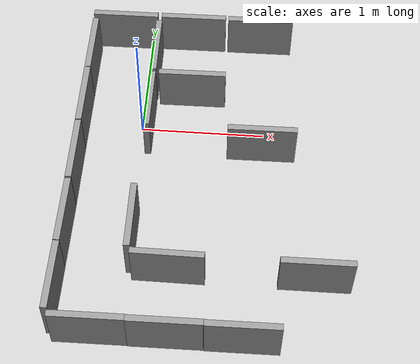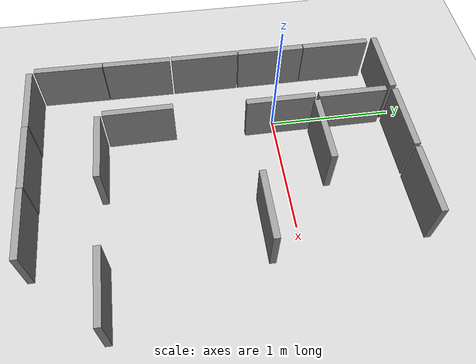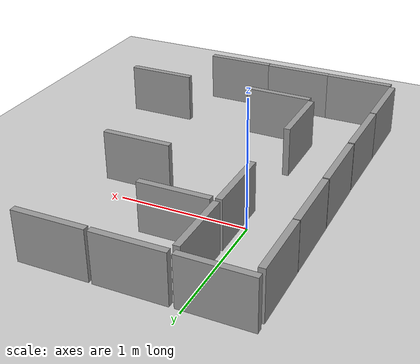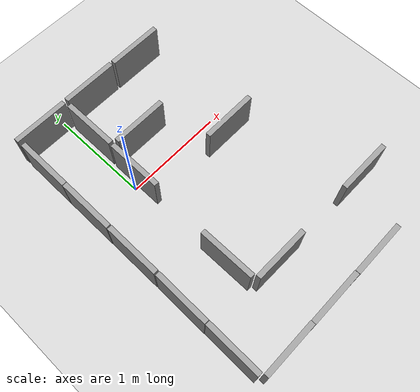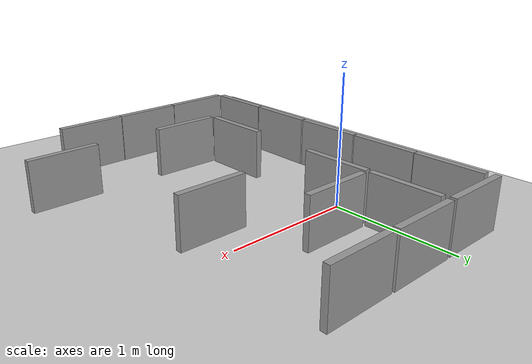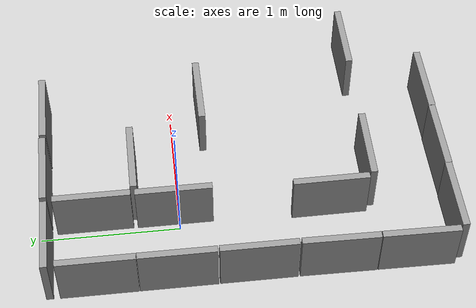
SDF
<sdf version="1.6">
 <world name="default">
  <model name="ground_plane">
   <static>1</static>
   <link name="link">
    <collision name="collision">
     <geometry><plane><normal>0 0 1</normal><size>100 100</size></plane></geometry>
     <surface>
      <contact><collide_bitmask>65535</collide_bitmask></contact>
      <friction><ode><mu>100</mu><mu2>50</mu2></ode></friction>
     </surface>
    </collision>
    <visual name="visual">
     <cast_shadows>0</cast_shadows>
     <geometry><plane><normal>0 0 1</normal><size>100 100</size></plane></geometry>
     <material>
      <script><uri>file://media/materials/scripts/gazebo.material</uri><name>Gazebo/Grey</name></script>
     </material>
    </visual>
   </link>
  </model>
  <model name="Maze_unit">
   <link name="link">
    <inertial>
     <mass>1</mass>
     <inertia>
      <ixx>0.166667</ixx>
      <ixy>0</ixy>
      <ixz>0</ixz>
      <iyy>0.166667</iyy>
      <iyz>0</iyz>
      <izz>0.166667</izz>
     </inertia>
    </inertial>
    <pose>-0.463146 -0.530916 -0 0 -0 0</pose>
    <visual name="visual">
     <geometry><box><size>0.05 0.55 0.4</size></box></geometry>
     <material>
      <script><name>Gazebo/Grey</name><uri>file://media/materials/scripts/gazebo.material</uri></script>
      <shader type="vertex"><normal_map>__default__</normal_map></shader>
      <ambient>0.3 0.3 0.3 1</ambient>
      <diffuse>0.7 0.7 0.7 1</diffuse>
      <specular>0.01 0.01 0.01 1</specular>
      <emissive>0 0 0 1</emissive>
     </material>
    </visual>
    <collision name="collision">
     <geometry><box><size>0.05 0.55 0.4</size></box></geometry>
     <surface>
      <friction>
       <ode><mu>1</mu><mu2>1</mu2><fdir1>0 0 0</fdir1><slip1>0</slip1><slip2>0</slip2></ode>
       <torsional>
        <coefficient>1</coefficient>
        <patch_radius>0</patch_radius>
        <surface_radius>0</surface_radius>
        <use_patch_radius>1</use_patch_radius>
        <ode><slip>0</slip></ode>
       </torsional>
      </friction>
      <bounce><restitution_coefficient>0</restitution_coefficient><threshold>1e+06</threshold></bounce>
      <contact>
       <collide_without_contact>0</collide_without_contact>
       <collide_without_contact_bitmask>1</collide_without_contact_bitmask>
       <collide_bitmask>1</collide_bitmask>
       <ode>
        <soft_cfm>0</soft_cfm>
        <soft_erp>0.2</soft_erp>
        <kp>1e+13</kp>
        <kd>1</kd>
        <max_vel>0.01</max_vel>
        <min_depth>0</min_depth>
       </ode>
       <bullet>
        <split_impulse>1</split_impulse>
        <split_impulse_penetration_threshold>-0.01</split_impulse_penetration_threshold>
        <soft_cfm>0</soft_cfm>
        <soft_erp>0.2</soft_erp>
        <kp>1e+13</kp>
        <kd>1</kd>
       </bullet>
      </contact>
     </surface>
    </collision>
   </link>
   <static>1</static>
   <pose>-0.011181 -1.11117 0.199993 -9e-06 -0 -0.010706</pose>
  </model>
  <model name="Maze_unit_0">
   <link name="link">
    <inertial>
     <mass>1</mass>
     <inertia>
      <ixx>0.166667</ixx>
      <ixy>0</ixy>
      <ixz>0</ixz>
      <iyy>0.166667</iyy>
      <iyz>0</iyz>
      <izz>0.166667</izz>
     </inertia>
    </inertial>
    <pose>-0.463146 -0.530916 -0 0 -0 0</pose>
    <visual name="visual">
     <geometry><box><size>0.05 0.55 0.4</size></box></geometry>
     <material>
      <script><name>Gazebo/Grey</name><uri>file://media/materials/scripts/gazebo.material</uri></script>
      <shader type="vertex"><normal_map>__default__</normal_map></shader>
      <ambient>0.3 0.3 0.3 1</ambient>
      <diffuse>0.7 0.7 0.7 1</diffuse>
      <specular>0.01 0.01 0.01 1</specular>
      <emissive>0 0 0 1</emissive>
     </material>
    </visual>
    <collision name="collision">
     <geometry><box><size>0.05 0.55 0.4</size></box></geometry>
     <surface>
      <friction>
       <ode><mu>1</mu><mu2>1</mu2><fdir1>0 0 0</fdir1><slip1>0</slip1><slip2>0</slip2></ode>
       <torsional>
        <coefficient>1</coefficient>
        <patch_radius>0</patch_radius>
        <surface_radius>0</surface_radius>
        <use_patch_radius>1</use_patch_radius>
        <ode><slip>0</slip></ode>
       </torsional>
      </friction>
      <bounce><restitution_coefficient>0</restitution_coefficient><threshold>1e+06</threshold></bounce>
      <contact>
       <collide_without_contact>0</collide_without_contact>
       <collide_without_contact_bitmask>1</collide_without_contact_bitmask>
       <collide_bitmask>1</collide_bitmask>
       <ode>
        <soft_cfm>0</soft_cfm>
        <soft_erp>0.2</soft_erp>
        <kp>1e+13</kp>
        <kd>1</kd>
        <max_vel>0.01</max_vel>
        <min_depth>0</min_depth>
       </ode>
       <bullet>
        <split_impulse>1</split_impulse>
        <split_impulse_penetration_threshold>-0.01</split_impulse_penetration_threshold>
        <soft_cfm>0</soft_cfm>
        <soft_erp>0.2</soft_erp>
        <kp>1e+13</kp>
        <kd>1</kd>
       </bullet>
      </contact>
     </surface>
    </collision>
   </link>
   <static>1</static>
   <pose>-0.006114 -0.556244 0.2 0 0 -0.010815</pose>
  </model>
  <model name="Maze_unit_clone">
   <link name="link">
    <inertial>
     <mass>1</mass>
     <inertia>
      <ixx>0.166667</ixx>
      <ixy>0</ixy>
      <ixz>0</ixz>
      <iyy>0.166667</iyy>
      <iyz>0</iyz>
      <izz>0.166667</izz>
     </inertia>
    </inertial>
    <pose>-0.463146 -0.530916 -0 0 -0 0</pose>
    <visual name="visual">
     <geometry><box><size>0.05 0.55 0.4</size></box></geometry>
     <material>
      <script><name>Gazebo/Grey</name><uri>file://media/materials/scripts/gazebo.material</uri></script>
      <shader type="vertex"><normal_map>__default__</normal_map></shader>
      <ambient>0.3 0.3 0.3 1</ambient>
      <diffuse>0.7 0.7 0.7 1</diffuse>
      <specular>0.01 0.01 0.01 1</specular>
      <emissive>0 0 0 1</emissive>
     </material>
    </visual>
    <collision name="collision">
     <geometry><box><size>0.05 0.55 0.4</size></box></geometry>
     <surface>
      <friction>
       <ode><mu>1</mu><mu2>1</mu2><fdir1>0 0 0</fdir1><slip1>0</slip1><slip2>0</slip2></ode>
       <torsional>
        <coefficient>1</coefficient>
        <patch_radius>0</patch_radius>
        <surface_radius>0</surface_radius>
        <use_patch_radius>1</use_patch_radius>
        <ode><slip>0</slip></ode>
       </torsional>
      </friction>
      <bounce><restitution_coefficient>0</restitution_coefficient><threshold>1e+06</threshold></bounce>
      <contact>
       <collide_without_contact>0</collide_without_contact>
       <collide_without_contact_bitmask>1</collide_without_contact_bitmask>
       <collide_bitmask>1</collide_bitmask>
       <ode>
        <soft_cfm>0</soft_cfm>
        <soft_erp>0.2</soft_erp>
        <kp>1e+13</kp>
        <kd>1</kd>
        <max_vel>0.01</max_vel>
        <min_depth>0</min_depth>
       </ode>
       <bullet>
        <split_impulse>1</split_impulse>
        <split_impulse_penetration_threshold>-0.01</split_impulse_penetration_threshold>
        <soft_cfm>0</soft_cfm>
        <soft_erp>0.2</soft_erp>
        <kp>1e+13</kp>
        <kd>1</kd>
       </bullet>
      </contact>
     </surface>
    </collision>
   </link>
   <static>1</static>
   <pose>-0.009405 0.011997 0.2 0 0 -0.000526</pose>
  </model>
  <model name="Maze_unit_clone_0">
   <link name="link">
    <inertial>
     <mass>1</mass>
     <inertia>
      <ixx>0.166667</ixx>
      <ixy>0</ixy>
      <ixz>0</ixz>
      <iyy>0.166667</iyy>
      <iyz>0</iyz>
      <izz>0.166667</izz>
     </inertia>
    </inertial>
    <pose>-0.463146 -0.530916 -0 0 -0 0</pose>
    <visual name="visual">
     <geometry><box><size>0.05 0.55 0.4</size></box></geometry>
     <material>
      <script><name>Gazebo/Grey</name><uri>file://media/materials/scripts/gazebo.material</uri></script>
      <shader type="vertex"><normal_map>__default__</normal_map></shader>
      <ambient>0.3 0.3 0.3 1</ambient>
      <diffuse>0.7 0.7 0.7 1</diffuse>
      <specular>0.01 0.01 0.01 1</specular>
      <emissive>0 0 0 1</emissive>
     </material>
    </visual>
    <collision name="collision">
     <geometry><box><size>0.05 0.55 0.4</size></box></geometry>
     <surface>
      <friction>
       <ode><mu>1</mu><mu2>1</mu2><fdir1>0 0 0</fdir1><slip1>0</slip1><slip2>0</slip2></ode>
       <torsional>
        <coefficient>1</coefficient>
        <patch_radius>0</patch_radius>
        <surface_radius>0</surface_radius>
        <use_patch_radius>1</use_patch_radius>
        <ode><slip>0</slip></ode>
       </torsional>
      </friction>
      <bounce><restitution_coefficient>0</restitution_coefficient><threshold>1e+06</threshold></bounce>
      <contact>
       <collide_without_contact>0</collide_without_contact>
       <collide_without_contact_bitmask>1</collide_without_contact_bitmask>
       <collide_bitmask>1</collide_bitmask>
       <ode>
        <soft_cfm>0</soft_cfm>
        <soft_erp>0.2</soft_erp>
        <kp>1e+13</kp>
        <kd>1</kd>
        <max_vel>0.01</max_vel>
        <min_depth>0</min_depth>
       </ode>
       <bullet>
        <split_impulse>1</split_impulse>
        <split_impulse_penetration_threshold>-0.01</split_impulse_penetration_threshold>
        <soft_cfm>0</soft_cfm>
        <soft_erp>0.2</soft_erp>
        <kp>1e+13</kp>
        <kd>1</kd>
       </bullet>
      </contact>
     </surface>
    </collision>
   </link>
   <static>1</static>
   <pose>-0.010054 0.572677 0.2 1e-06 1e-06 -0.00027</pose>
  </model>
  <model name="Maze_unit_clone_1">
   <link name="link">
    <inertial>
     <mass>1</mass>
     <inertia>
      <ixx>0.166667</ixx>
      <ixy>0</ixy>
      <ixz>0</ixz>
      <iyy>0.166667</iyy>
      <iyz>0</iyz>
      <izz>0.166667</izz>
     </inertia>
    </inertial>
    <pose>-0.463146 -0.530916 -0 0 -0 0</pose>
    <visual name="visual">
     <geometry><box><size>0.05 0.55 0.4</size></box></geometry>
     <material>
      <script><name>Gazebo/Grey</name><uri>file://media/materials/scripts/gazebo.material</uri></script>
      <shader type="vertex"><normal_map>__default__</normal_map></shader>
      <ambient>0.3 0.3 0.3 1</ambient>
      <diffuse>0.7 0.7 0.7 1</diffuse>
      <specular>0.01 0.01 0.01 1</specular>
      <emissive>0 0 0 1</emissive>
     </material>
    </visual>
    <collision name="collision">
     <geometry><box><size>0.05 0.55 0.4</size></box></geometry>
     <surface>
      <friction>
       <ode><mu>1</mu><mu2>1</mu2><fdir1>0 0 0</fdir1><slip1>0</slip1><slip2>0</slip2></ode>
       <torsional>
        <coefficient>1</coefficient>
        <patch_radius>0</patch_radius>
        <surface_radius>0</surface_radius>
        <use_patch_radius>1</use_patch_radius>
        <ode><slip>0</slip></ode>
       </torsional>
      </friction>
      <bounce><restitution_coefficient>0</restitution_coefficient><threshold>1e+06</threshold></bounce>
      <contact>
       <collide_without_contact>0</collide_without_contact>
       <collide_without_contact_bitmask>1</collide_without_contact_bitmask>
       <collide_bitmask>1</collide_bitmask>
       <ode>
        <soft_cfm>0</soft_cfm>
        <soft_erp>0.2</soft_erp>
        <kp>1e+13</kp>
        <kd>1</kd>
        <max_vel>0.01</max_vel>
        <min_depth>0</min_depth>
       </ode>
       <bullet>
        <split_impulse>1</split_impulse>
        <split_impulse_penetration_threshold>-0.01</split_impulse_penetration_threshold>
        <soft_cfm>0</soft_cfm>
        <soft_erp>0.2</soft_erp>
        <kp>1e+13</kp>
        <kd>1</kd>
       </bullet>
      </contact>
     </surface>
    </collision>
   </link>
   <static>1</static>
   <pose>-0.010091 1.1268 0.2 0 0 -0.000544</pose>
  </model>
  <model name="Maze_unit_clone_2">
   <link name="link">
    <inertial>
     <mass>1</mass>
     <inertia>
      <ixx>0.166667</ixx>
      <ixy>0</ixy>
      <ixz>0</ixz>
      <iyy>0.166667</iyy>
      <iyz>0</iyz>
      <izz>0.166667</izz>
     </inertia>
    </inertial>
    <pose>-0.463146 -0.530916 -0 0 -0 0</pose>
    <visual name="visual">
     <geometry><box><size>0.05 0.55 0.4</size></box></geometry>
     <material>
      <script><name>Gazebo/Grey</name><uri>file://media/materials/scripts/gazebo.material</uri></script>
      <shader type="vertex"><normal_map>__default__</normal_map></shader>
      <ambient>0.3 0.3 0.3 1</ambient>
      <diffuse>0.7 0.7 0.7 1</diffuse>
      <specular>0.01 0.01 0.01 1</specular>
      <emissive>0 0 0 1</emissive>
     </material>
    </visual>
    <collision name="collision">
     <geometry><box><size>0.05 0.55 0.4</size></box></geometry>
     <surface>
      <friction>
       <ode><mu>1</mu><mu2>1</mu2><fdir1>0 0 0</fdir1><slip1>0</slip1><slip2>0</slip2></ode>
       <torsional>
        <coefficient>1</coefficient>
        <patch_radius>0</patch_radius>
        <surface_radius>0</surface_radius>
        <use_patch_radius>1</use_patch_radius>
        <ode><slip>0</slip></ode>
       </torsional>
      </friction>
      <bounce><restitution_coefficient>0</restitution_coefficient><threshold>1e+06</threshold></bounce>
      <contact>
       <collide_without_contact>0</collide_without_contact>
       <collide_without_contact_bitmask>1</collide_without_contact_bitmask>
       <collide_bitmask>1</collide_bitmask>
       <ode>
        <soft_cfm>0</soft_cfm>
        <soft_erp>0.2</soft_erp>
        <kp>1e+13</kp>
        <kd>1</kd>
        <max_vel>0.01</max_vel>
        <min_depth>0</min_depth>
       </ode>
       <bullet>
        <split_impulse>1</split_impulse>
        <split_impulse_penetration_threshold>-0.01</split_impulse_penetration_threshold>
        <soft_cfm>0</soft_cfm>
        <soft_erp>0.2</soft_erp>
        <kp>1e+13</kp>
        <kd>1</kd>
       </bullet>
      </contact>
     </surface>
    </collision>
   </link>
   <static>1</static>
   <pose>0.496874 -0.561026 0.2 0 -0 0.006084</pose>
  </model>
  <model name="Maze_unit_clone_3">
   <link name="link">
    <inertial>
     <mass>1</mass>
     <inertia>
      <ixx>0.166667</ixx>
      <ixy>0</ixy>
      <ixz>0</ixz>
      <iyy>0.166667</iyy>
      <iyz>0</iyz>
      <izz>0.166667</izz>
     </inertia>
    </inertial>
    <pose>-0.463146 -0.530916 -0 0 -0 0</pose>
    <visual name="visual">
     <geometry><box><size>0.05 0.55 0.4</size></box></geometry>
     <material>
      <script><name>Gazebo/Grey</name><uri>file://media/materials/scripts/gazebo.material</uri></script>
      <shader type="vertex"><normal_map>__default__</normal_map></shader>
      <ambient>0.3 0.3 0.3 1</ambient>
      <diffuse>0.7 0.7 0.7 1</diffuse>
      <specular>0.01 0.01 0.01 1</specular>
      <emissive>0 0 0 1</emissive>
     </material>
    </visual>
    <collision name="collision">
     <geometry><box><size>0.05 0.55 0.4</size></box></geometry>
     <surface>
      <friction>
       <ode><mu>1</mu><mu2>1</mu2><fdir1>0 0 0</fdir1><slip1>0</slip1><slip2>0</slip2></ode>
       <torsional>
        <coefficient>1</coefficient>
        <patch_radius>0</patch_radius>
        <surface_radius>0</surface_radius>
        <use_patch_radius>1</use_patch_radius>
        <ode><slip>0</slip></ode>
       </torsional>
      </friction>
      <bounce><restitution_coefficient>0</restitution_coefficient><threshold>1e+06</threshold></bounce>
      <contact>
       <collide_without_contact>0</collide_without_contact>
       <collide_without_contact_bitmask>1</collide_without_contact_bitmask>
       <collide_bitmask>1</collide_bitmask>
       <ode>
        <soft_cfm>0</soft_cfm>
        <soft_erp>0.2</soft_erp>
        <kp>1e+13</kp>
        <kd>1</kd>
        <max_vel>0.01</max_vel>
        <min_depth>0</min_depth>
       </ode>
       <bullet>
        <split_impulse>1</split_impulse>
        <split_impulse_penetration_threshold>-0.01</split_impulse_penetration_threshold>
        <soft_cfm>0</soft_cfm>
        <soft_erp>0.2</soft_erp>
        <kp>1e+13</kp>
        <kd>1</kd>
       </bullet>
      </contact>
     </surface>
    </collision>
   </link>
   <static>1</static>
   <pose>0.530974 0.559352 0.2 0 -0 0.000106</pose>
  </model>
  <model name="Maze_unit_clone_4">
   <link name="link">
    <inertial>
     <mass>1</mass>
     <inertia>
      <ixx>0.166667</ixx>
      <ixy>0</ixy>
      <ixz>0</ixz>
      <iyy>0.166667</iyy>
      <iyz>0</iyz>
      <izz>0.166667</izz>
     </inertia>
    </inertial>
    <pose>-0.463146 -0.530916 -0 0 -0 0</pose>
    <visual name="visual">
     <geometry><box><size>0.05 0.55 0.4</size></box></geometry>
     <material>
      <script><name>Gazebo/Grey</name><uri>file://media/materials/scripts/gazebo.material</uri></script>
      <shader type="vertex"><normal_map>__default__</normal_map></shader>
      <ambient>0.3 0.3 0.3 1</ambient>
      <diffuse>0.7 0.7 0.7 1</diffuse>
      <specular>0.01 0.01 0.01 1</specular>
      <emissive>0 0 0 1</emissive>
     </material>
    </visual>
    <collision name="collision">
     <geometry><box><size>0.05 0.55 0.4</size></box></geometry>
     <surface>
      <friction>
       <ode><mu>1</mu><mu2>1</mu2><fdir1>0 0 0</fdir1><slip1>0</slip1><slip2>0</slip2></ode>
       <torsional>
        <coefficient>1</coefficient>
        <patch_radius>0</patch_radius>
        <surface_radius>0</surface_radius>
        <use_patch_radius>1</use_patch_radius>
        <ode><slip>0</slip></ode>
       </torsional>
      </friction>
      <bounce><restitution_coefficient>0</restitution_coefficient><threshold>1e+06</threshold></bounce>
      <contact>
       <collide_without_contact>0</collide_without_contact>
       <collide_without_contact_bitmask>1</collide_without_contact_bitmask>
       <collide_bitmask>1</collide_bitmask>
       <ode>
        <soft_cfm>0</soft_cfm>
        <soft_erp>0.2</soft_erp>
        <kp>1e+13</kp>
        <kd>1</kd>
        <max_vel>0.01</max_vel>
        <min_depth>0</min_depth>
       </ode>
       <bullet>
        <split_impulse>1</split_impulse>
        <split_impulse_penetration_threshold>-0.01</split_impulse_penetration_threshold>
        <soft_cfm>0</soft_cfm>
        <soft_erp>0.2</soft_erp>
        <kp>1e+13</kp>
        <kd>1</kd>
       </bullet>
      </contact>
     </surface>
    </collision>
   </link>
   <static>1</static>
   <pose>0.53227 1.1388 0.199993 -9e-06 -0 0.001029</pose>
  </model>
  <model name="Maze_unit_clone_5">
   <link name="link">
    <inertial>
     <mass>1</mass>
     <inertia>
      <ixx>0.166667</ixx>
      <ixy>0</ixy>
      <ixz>0</ixz>
      <iyy>0.166667</iyy>
      <iyz>0</iyz>
      <izz>0.166667</izz>
     </inertia>
    </inertial>
    <pose>-0.463146 -0.530916 -0 0 -0 0</pose>
    <visual name="visual">
     <geometry><box><size>0.05 0.55 0.4</size></box></geometry>
     <material>
      <script><name>Gazebo/Grey</name><uri>file://media/materials/scripts/gazebo.material</uri></script>
      <shader type="vertex"><normal_map>__default__</normal_map></shader>
      <ambient>0.3 0.3 0.3 1</ambient>
      <diffuse>0.7 0.7 0.7 1</diffuse>
      <specular>0.01 0.01 0.01 1</specular>
      <emissive>0 0 0 1</emissive>
     </material>
    </visual>
    <collision name="collision">
     <geometry><box><size>0.05 0.55 0.4</size></box></geometry>
     <surface>
      <friction>
       <ode><mu>1</mu><mu2>1</mu2><fdir1>0 0 0</fdir1><slip1>0</slip1><slip2>0</slip2></ode>
       <torsional>
        <coefficient>1</coefficient>
        <patch_radius>0</patch_radius>
        <surface_radius>0</surface_radius>
        <use_patch_radius>1</use_patch_radius>
        <ode><slip>0</slip></ode>
       </torsional>
      </friction>
      <bounce><restitution_coefficient>0</restitution_coefficient><threshold>1e+06</threshold></bounce>
      <contact>
       <collide_without_contact>0</collide_without_contact>
       <collide_without_contact_bitmask>1</collide_without_contact_bitmask>
       <collide_bitmask>1</collide_bitmask>
       <ode>
        <soft_cfm>0</soft_cfm>
        <soft_erp>0.2</soft_erp>
        <kp>1e+13</kp>
        <kd>1</kd>
        <max_vel>0.01</max_vel>
        <min_depth>0</min_depth>
       </ode>
       <bullet>
        <split_impulse>1</split_impulse>
        <split_impulse_penetration_threshold>-0.01</split_impulse_penetration_threshold>
        <soft_cfm>0</soft_cfm>
        <soft_erp>0.2</soft_erp>
        <kp>1e+13</kp>
        <kd>1</kd>
       </bullet>
      </contact>
     </surface>
    </collision>
   </link>
   <static>1</static>
   <pose>-0.718563 -1.48869 0.200001 0 -2e-06 1.5766</pose>
  </model>
  <model name="Maze_unit_clone_5_clone">
   <link name="link">
    <inertial>
     <mass>1</mass>
     <inertia>
      <ixx>0.166667</ixx>
      <ixy>0</ixy>
      <ixz>0</ixz>
      <iyy>0.166667</iyy>
      <iyz>0</iyz>
      <izz>0.166667</izz>
     </inertia>
    </inertial>
    <pose>-0.463146 -0.530916 -0 0 -0 0</pose>
    <visual name="visual">
     <geometry><box><size>0.05 0.55 0.4</size></box></geometry>
     <material>
      <script><name>Gazebo/Grey</name><uri>file://media/materials/scripts/gazebo.material</uri></script>
      <shader type="vertex"><normal_map>__default__</normal_map></shader>
      <ambient>0.3 0.3 0.3 1</ambient>
      <diffuse>0.7 0.7 0.7 1</diffuse>
      <specular>0.01 0.01 0.01 1</specular>
      <emissive>0 0 0 1</emissive>
     </material>
    </visual>
    <collision name="collision">
     <geometry><box><size>0.05 0.55 0.4</size></box></geometry>
     <surface>
      <friction>
       <ode><mu>1</mu><mu2>1</mu2><fdir1>0 0 0</fdir1><slip1>0</slip1><slip2>0</slip2></ode>
       <torsional>
        <coefficient>1</coefficient>
        <patch_radius>0</patch_radius>
        <surface_radius>0</surface_radius>
        <use_patch_radius>1</use_patch_radius>
        <ode><slip>0</slip></ode>
       </torsional>
      </friction>
      <bounce><restitution_coefficient>0</restitution_coefficient><threshold>1e+06</threshold></bounce>
      <contact>
       <collide_without_contact>0</collide_without_contact>
       <collide_without_contact_bitmask>1</collide_without_contact_bitmask>
       <collide_bitmask>1</collide_bitmask>
       <ode>
        <soft_cfm>0</soft_cfm>
        <soft_erp>0.2</soft_erp>
        <kp>1e+13</kp>
        <kd>1</kd>
        <max_vel>0.01</max_vel>
        <min_depth>0</min_depth>
       </ode>
       <bullet>
        <split_impulse>1</split_impulse>
        <split_impulse_penetration_threshold>-0.01</split_impulse_penetration_threshold>
        <soft_cfm>0</soft_cfm>
        <soft_erp>0.2</soft_erp>
        <kp>1e+13</kp>
        <kd>1</kd>
       </bullet>
      </contact>
     </surface>
    </collision>
   </link>
   <static>1</static>
   <pose>-0.168545 -1.48859 0.200001 0 -2e-06 1.5766</pose>
  </model>
  <model name="Maze_unit_clone_5_clone_0">
   <link name="link">
    <inertial>
     <mass>1</mass>
     <inertia>
      <ixx>0.166667</ixx>
      <ixy>0</ixy>
      <ixz>0</ixz>
      <iyy>0.166667</iyy>
      <iyz>0</iyz>
      <izz>0.166667</izz>
     </inertia>
    </inertial>
    <pose>-0.463146 -0.530916 -0 0 -0 0</pose>
    <visual name="visual">
     <geometry><box><size>0.05 0.55 0.4</size></box></geometry>
     <material>
      <script><name>Gazebo/Grey</name><uri>file://media/materials/scripts/gazebo.material</uri></script>
      <shader type="vertex"><normal_map>__default__</normal_map></shader>
      <ambient>0.3 0.3 0.3 1</ambient>
      <diffuse>0.7 0.7 0.7 1</diffuse>
      <specular>0.01 0.01 0.01 1</specular>
      <emissive>0 0 0 1</emissive>
     </material>
    </visual>
    <collision name="collision">
     <geometry><box><size>0.05 0.55 0.4</size></box></geometry>
     <surface>
      <friction>
       <ode><mu>1</mu><mu2>1</mu2><fdir1>0 0 0</fdir1><slip1>0</slip1><slip2>0</slip2></ode>
       <torsional>
        <coefficient>1</coefficient>
        <patch_radius>0</patch_radius>
        <surface_radius>0</surface_radius>
        <use_patch_radius>1</use_patch_radius>
        <ode><slip>0</slip></ode>
       </torsional>
      </friction>
      <bounce><restitution_coefficient>0</restitution_coefficient><threshold>1e+06</threshold></bounce>
      <contact>
       <collide_without_contact>0</collide_without_contact>
       <collide_without_contact_bitmask>1</collide_without_contact_bitmask>
       <collide_bitmask>1</collide_bitmask>
       <ode>
        <soft_cfm>0</soft_cfm>
        <soft_erp>0.2</soft_erp>
        <kp>1e+13</kp>
        <kd>1</kd>
        <max_vel>0.01</max_vel>
        <min_depth>0</min_depth>
       </ode>
       <bullet>
        <split_impulse>1</split_impulse>
        <split_impulse_penetration_threshold>-0.01</split_impulse_penetration_threshold>
        <soft_cfm>0</soft_cfm>
        <soft_erp>0.2</soft_erp>
        <kp>1e+13</kp>
        <kd>1</kd>
       </bullet>
      </contact>
     </surface>
    </collision>
   </link>
   <static>1</static>
   <pose>0.382808 -1.48868 0.200002 -0 -5e-06 1.57668</pose>
  </model>
  <model name="Maze_unit_clone_5_clone_3">
   <link name="link">
    <inertial>
     <mass>1</mass>
     <inertia>
      <ixx>0.166667</ixx>
      <ixy>0</ixy>
      <ixz>0</ixz>
      <iyy>0.166667</iyy>
      <iyz>0</iyz>
      <izz>0.166667</izz>
     </inertia>
    </inertial>
    <pose>-0.463146 -0.530916 -0 0 -0 0</pose>
    <visual name="visual">
     <geometry><box><size>0.05 0.55 0.4</size></box></geometry>
     <material>
      <script><name>Gazebo/Grey</name><uri>file://media/materials/scripts/gazebo.material</uri></script>
      <shader type="vertex"><normal_map>__default__</normal_map></shader>
      <ambient>0.3 0.3 0.3 1</ambient>
      <diffuse>0.7 0.7 0.7 1</diffuse>
      <specular>0.01 0.01 0.01 1</specular>
      <emissive>0 0 0 1</emissive>
     </material>
    </visual>
    <collision name="collision">
     <geometry><box><size>0.05 0.55 0.4</size></box></geometry>
     <surface>
      <friction>
       <ode><mu>1</mu><mu2>1</mu2><fdir1>0 0 0</fdir1><slip1>0</slip1><slip2>0</slip2></ode>
       <torsional>
        <coefficient>1</coefficient>
        <patch_radius>0</patch_radius>
        <surface_radius>0</surface_radius>
        <use_patch_radius>1</use_patch_radius>
        <ode><slip>0</slip></ode>
       </torsional>
      </friction>
      <bounce><restitution_coefficient>0</restitution_coefficient><threshold>1e+06</threshold></bounce>
      <contact>
       <collide_without_contact>0</collide_without_contact>
       <collide_without_contact_bitmask>1</collide_without_contact_bitmask>
       <collide_bitmask>1</collide_bitmask>
       <ode>
        <soft_cfm>0</soft_cfm>
        <soft_erp>0.2</soft_erp>
        <kp>1e+13</kp>
        <kd>1</kd>
        <max_vel>0.01</max_vel>
        <min_depth>0</min_depth>
       </ode>
       <bullet>
        <split_impulse>1</split_impulse>
        <split_impulse_penetration_threshold>-0.01</split_impulse_penetration_threshold>
        <soft_cfm>0</soft_cfm>
        <soft_erp>0.2</soft_erp>
        <kp>1e+13</kp>
        <kd>1</kd>
       </bullet>
      </contact>
     </surface>
    </collision>
   </link>
   <static>1</static>
   <pose>-0.752801 1.40494 0.2 0 1e-06 1.57111</pose>
  </model>
  <model name="Maze_unit_clone_5_clone_4">
   <link name="link">
    <inertial>
     <mass>1</mass>
     <inertia>
      <ixx>0.166667</ixx>
      <ixy>0</ixy>
      <ixz>0</ixz>
      <iyy>0.166667</iyy>
      <iyz>0</iyz>
      <izz>0.166667</izz>
     </inertia>
    </inertial>
    <pose>-0.463146 -0.530916 -0 0 -0 0</pose>
    <visual name="visual">
     <geometry><box><size>0.05 0.55 0.4</size></box></geometry>
     <material>
      <script><name>Gazebo/Grey</name><uri>file://media/materials/scripts/gazebo.material</uri></script>
      <shader type="vertex"><normal_map>__default__</normal_map></shader>
      <ambient>0.3 0.3 0.3 1</ambient>
      <diffuse>0.7 0.7 0.7 1</diffuse>
      <specular>0.01 0.01 0.01 1</specular>
      <emissive>0 0 0 1</emissive>
     </material>
    </visual>
    <collision name="collision">
     <geometry><box><size>0.05 0.55 0.4</size></box></geometry>
     <surface>
      <friction>
       <ode><mu>1</mu><mu2>1</mu2><fdir1>0 0 0</fdir1><slip1>0</slip1><slip2>0</slip2></ode>
       <torsional>
        <coefficient>1</coefficient>
        <patch_radius>0</patch_radius>
        <surface_radius>0</surface_radius>
        <use_patch_radius>1</use_patch_radius>
        <ode><slip>0</slip></ode>
       </torsional>
      </friction>
      <bounce><restitution_coefficient>0</restitution_coefficient><threshold>1e+06</threshold></bounce>
      <contact>
       <collide_without_contact>0</collide_without_contact>
       <collide_without_contact_bitmask>1</collide_without_contact_bitmask>
       <collide_bitmask>1</collide_bitmask>
       <ode>
        <soft_cfm>0</soft_cfm>
        <soft_erp>0.2</soft_erp>
        <kp>1e+13</kp>
        <kd>1</kd>
        <max_vel>0.01</max_vel>
        <min_depth>0</min_depth>
       </ode>
       <bullet>
        <split_impulse>1</split_impulse>
        <split_impulse_penetration_threshold>-0.01</split_impulse_penetration_threshold>
        <soft_cfm>0</soft_cfm>
        <soft_erp>0.2</soft_erp>
        <kp>1e+13</kp>
        <kd>1</kd>
       </bullet>
      </contact>
     </surface>
    </collision>
   </link>
   <static>1</static>
   <pose>-0.172311 1.40639 0.2 0 -0 1.57606</pose>
  </model>
  <model name="Maze_unit_clone_5_clone_5">
   <link name="link">
    <inertial>
     <mass>1</mass>
     <inertia>
      <ixx>0.166667</ixx>
      <ixy>0</ixy>
      <ixz>0</ixz>
      <iyy>0.166667</iyy>
      <iyz>0</iyz>
      <izz>0.166667</izz>
     </inertia>
    </inertial>
    <pose>-0.463146 -0.530916 -0 0 -0 0</pose>
    <visual name="visual">
     <geometry><box><size>0.05 0.55 0.4</size></box></geometry>
     <material>
      <script><name>Gazebo/Grey</name><uri>file://media/materials/scripts/gazebo.material</uri></script>
      <shader type="vertex"><normal_map>__default__</normal_map></shader>
      <ambient>0.3 0.3 0.3 1</ambient>
      <diffuse>0.7 0.7 0.7 1</diffuse>
      <specular>0.01 0.01 0.01 1</specular>
      <emissive>0 0 0 1</emissive>
     </material>
    </visual>
    <collision name="collision">
     <geometry><box><size>0.05 0.55 0.4</size></box></geometry>
     <surface>
      <friction>
       <ode><mu>1</mu><mu2>1</mu2><fdir1>0 0 0</fdir1><slip1>0</slip1><slip2>0</slip2></ode>
       <torsional>
        <coefficient>1</coefficient>
        <patch_radius>0</patch_radius>
        <surface_radius>0</surface_radius>
        <use_patch_radius>1</use_patch_radius>
        <ode><slip>0</slip></ode>
       </torsional>
      </friction>
      <bounce><restitution_coefficient>0</restitution_coefficient><threshold>1e+06</threshold></bounce>
      <contact>
       <collide_without_contact>0</collide_without_contact>
       <collide_without_contact_bitmask>1</collide_without_contact_bitmask>
       <collide_bitmask>1</collide_bitmask>
       <ode>
        <soft_cfm>0</soft_cfm>
        <soft_erp>0.2</soft_erp>
        <kp>1e+13</kp>
        <kd>1</kd>
        <max_vel>0.01</max_vel>
        <min_depth>0</min_depth>
       </ode>
       <bullet>
        <split_impulse>1</split_impulse>
        <split_impulse_penetration_threshold>-0.01</split_impulse_penetration_threshold>
        <soft_cfm>0</soft_cfm>
        <soft_erp>0.2</soft_erp>
        <kp>1e+13</kp>
        <kd>1</kd>
       </bullet>
      </contact>
     </surface>
    </collision>
   </link>
   <static>1</static>
   <pose>0.401259 1.40639 0.200003 9e-06 -0 1.57639</pose>
  </model>
  <model name="Maze_unit_clone_5_clone_8">
   <link name="link">
    <inertial>
     <mass>1</mass>
     <inertia>
      <ixx>0.166667</ixx>
      <ixy>0</ixy>
      <ixz>0</ixz>
      <iyy>0.166667</iyy>
      <iyz>0</iyz>
      <izz>0.166667</izz>
     </inertia>
    </inertial>
    <pose>-0.463146 -0.530916 -0 0 -0 0</pose>
    <visual name="visual">
     <geometry><box><size>0.05 0.55 0.4</size></box></geometry>
     <material>
      <script><name>Gazebo/Grey</name><uri>file://media/materials/scripts/gazebo.material</uri></script>
      <shader type="vertex"><normal_map>__default__</normal_map></shader>
      <ambient>0.3 0.3 0.3 1</ambient>
      <diffuse>0.7 0.7 0.7 1</diffuse>
      <specular>0.01 0.01 0.01 1</specular>
      <emissive>0 0 0 1</emissive>
     </material>
    </visual>
    <collision name="collision">
     <geometry><box><size>0.05 0.55 0.4</size></box></geometry>
     <surface>
      <friction>
       <ode><mu>1</mu><mu2>1</mu2><fdir1>0 0 0</fdir1><slip1>0</slip1><slip2>0</slip2></ode>
       <torsional>
        <coefficient>1</coefficient>
        <patch_radius>0</patch_radius>
        <surface_radius>0</surface_radius>
        <use_patch_radius>1</use_patch_radius>
        <ode><slip>0</slip></ode>
       </torsional>
      </friction>
      <bounce><restitution_coefficient>0</restitution_coefficient><threshold>1e+06</threshold></bounce>
      <contact>
       <collide_without_contact>0</collide_without_contact>
       <collide_without_contact_bitmask>1</collide_without_contact_bitmask>
       <collide_bitmask>1</collide_bitmask>
       <ode>
        <soft_cfm>0</soft_cfm>
        <soft_erp>0.2</soft_erp>
        <kp>1e+13</kp>
        <kd>1</kd>
        <max_vel>0.01</max_vel>
        <min_depth>0</min_depth>
       </ode>
       <bullet>
        <split_impulse>1</split_impulse>
        <split_impulse_penetration_threshold>-0.01</split_impulse_penetration_threshold>
        <soft_cfm>0</soft_cfm>
        <soft_erp>0.2</soft_erp>
        <kp>1e+13</kp>
        <kd>1</kd>
       </bullet>
      </contact>
     </surface>
    </collision>
   </link>
   <static>1</static>
   <pose>-0.139605 0.769959 0.2 1e-06 1e-06 1.57661</pose>
  </model>
  <model name="Maze_unit_clone_5_clone_9">
   <link name="link">
    <inertial>
     <mass>1</mass>
     <inertia>
      <ixx>0.166667</ixx>
      <ixy>0</ixy>
      <ixz>0</ixz>
      <iyy>0.166667</iyy>
      <iyz>0</iyz>
      <izz>0.166667</izz>
     </inertia>
    </inertial>
    <pose>-0.463146 -0.530916 -0 0 -0 0</pose>
    <visual name="visual">
     <geometry><box><size>0.05 0.55 0.4</size></box></geometry>
     <material>
      <script><name>Gazebo/Grey</name><uri>file://media/materials/scripts/gazebo.material</uri></script>
      <shader type="vertex"><normal_map>__default__</normal_map></shader>
      <ambient>0.3 0.3 0.3 1</ambient>
      <diffuse>0.7 0.7 0.7 1</diffuse>
      <specular>0.01 0.01 0.01 1</specular>
      <emissive>0 0 0 1</emissive>
     </material>
    </visual>
    <collision name="collision">
     <geometry><box><size>0.05 0.55 0.4</size></box></geometry>
     <surface>
      <friction>
       <ode><mu>1</mu><mu2>1</mu2><fdir1>0 0 0</fdir1><slip1>0</slip1><slip2>0</slip2></ode>
       <torsional>
        <coefficient>1</coefficient>
        <patch_radius>0</patch_radius>
        <surface_radius>0</surface_radius>
        <use_patch_radius>1</use_patch_radius>
        <ode><slip>0</slip></ode>
       </torsional>
      </friction>
      <bounce><restitution_coefficient>0</restitution_coefficient><threshold>1e+06</threshold></bounce>
      <contact>
       <collide_without_contact>0</collide_without_contact>
       <collide_without_contact_bitmask>1</collide_without_contact_bitmask>
       <collide_bitmask>1</collide_bitmask>
       <ode>
        <soft_cfm>0</soft_cfm>
        <soft_erp>0.2</soft_erp>
        <kp>1e+13</kp>
        <kd>1</kd>
        <max_vel>0.01</max_vel>
        <min_depth>0</min_depth>
       </ode>
       <bullet>
        <split_impulse>1</split_impulse>
        <split_impulse_penetration_threshold>-0.01</split_impulse_penetration_threshold>
        <soft_cfm>0</soft_cfm>
        <soft_erp>0.2</soft_erp>
        <kp>1e+13</kp>
        <kd>1</kd>
       </bullet>
      </contact>
     </surface>
    </collision>
   </link>
   <static>1</static>
   <pose>-0.188035 -0.940513 0.199998 0 4e-06 1.55995</pose>
  </model>
  <model name="Maze_unit_clone_5_clone_10">
   <link name="link">
    <inertial>
     <mass>1</mass>
     <inertia>
      <ixx>0.166667</ixx>
      <ixy>0</ixy>
      <ixz>0</ixz>
      <iyy>0.166667</iyy>
      <iyz>0</iyz>
      <izz>0.166667</izz>
     </inertia>
    </inertial>
    <pose>-0.463146 -0.530916 -0 0 -0 0</pose>
    <visual name="visual">
     <geometry><box><size>0.05 0.55 0.4</size></box></geometry>
     <material>
      <script><name>Gazebo/Grey</name><uri>file://media/materials/scripts/gazebo.material</uri></script>
      <shader type="vertex"><normal_map>__default__</normal_map></shader>
      <ambient>0.3 0.3 0.3 1</ambient>
      <diffuse>0.7 0.7 0.7 1</diffuse>
      <specular>0.01 0.01 0.01 1</specular>
      <emissive>0 0 0 1</emissive>
     </material>
    </visual>
    <collision name="collision">
     <geometry><box><size>0.05 0.55 0.4</size></box></geometry>
     <surface>
      <friction>
       <ode><mu>1</mu><mu2>1</mu2><fdir1>0 0 0</fdir1><slip1>0</slip1><slip2>0</slip2></ode>
       <torsional>
        <coefficient>1</coefficient>
        <patch_radius>0</patch_radius>
        <surface_radius>0</surface_radius>
        <use_patch_radius>1</use_patch_radius>
        <ode><slip>0</slip></ode>
       </torsional>
      </friction>
      <bounce><restitution_coefficient>0</restitution_coefficient><threshold>1e+06</threshold></bounce>
      <contact>
       <collide_without_contact>0</collide_without_contact>
       <collide_without_contact_bitmask>1</collide_without_contact_bitmask>
       <collide_bitmask>1</collide_bitmask>
       <ode>
        <soft_cfm>0</soft_cfm>
        <soft_erp>0.2</soft_erp>
        <kp>1e+13</kp>
        <kd>1</kd>
        <max_vel>0.01</max_vel>
        <min_depth>0</min_depth>
       </ode>
       <bullet>
        <split_impulse>1</split_impulse>
        <split_impulse_penetration_threshold>-0.01</split_impulse_penetration_threshold>
        <soft_cfm>0</soft_cfm>
        <soft_erp>0.2</soft_erp>
        <kp>1e+13</kp>
        <kd>1</kd>
       </bullet>
      </contact>
     </surface>
    </collision>
   </link>
   <static>1</static>
   <pose>0.456642 0.230422 0.200001 0 -2e-06 1.5765</pose>
  </model>
  <model name="Maze_unit_clone_5_clone_12">
   <link name="link">
    <inertial>
     <mass>1</mass>
     <inertia>
      <ixx>0.166667</ixx>
      <ixy>0</ixy>
      <ixz>0</ixz>
      <iyy>0.166667</iyy>
      <iyz>0</iyz>
      <izz>0.166667</izz>
     </inertia>
    </inertial>
    <pose>-0.463146 -0.530916 -0 0 -0 0</pose>
    <visual name="visual">
     <geometry><box><size>0.05 0.55 0.4</size></box></geometry>
     <material>
      <script><name>Gazebo/Grey</name><uri>file://media/materials/scripts/gazebo.material</uri></script>
      <shader type="vertex"><normal_map>__default__</normal_map></shader>
      <ambient>0.3 0.3 0.3 1</ambient>
      <diffuse>0.7 0.7 0.7 1</diffuse>
      <specular>0.01 0.01 0.01 1</specular>
      <emissive>0 0 0 1</emissive>
     </material>
    </visual>
    <collision name="collision">
     <geometry><box><size>0.05 0.55 0.4</size></box></geometry>
     <surface>
      <friction>
       <ode><mu>1</mu><mu2>1</mu2><fdir1>0 0 0</fdir1><slip1>0</slip1><slip2>0</slip2></ode>
       <torsional>
        <coefficient>1</coefficient>
        <patch_radius>0</patch_radius>
        <surface_radius>0</surface_radius>
        <use_patch_radius>1</use_patch_radius>
        <ode><slip>0</slip></ode>
       </torsional>
      </friction>
      <bounce><restitution_coefficient>0</restitution_coefficient><threshold>1e+06</threshold></bounce>
      <contact>
       <collide_without_contact>0</collide_without_contact>
       <collide_without_contact_bitmask>1</collide_without_contact_bitmask>
       <collide_bitmask>1</collide_bitmask>
       <ode>
        <soft_cfm>0</soft_cfm>
        <soft_erp>0.2</soft_erp>
        <kp>1e+13</kp>
        <kd>1</kd>
        <max_vel>0.01</max_vel>
        <min_depth>0</min_depth>
       </ode>
       <bullet>
        <split_impulse>1</split_impulse>
        <split_impulse_penetration_threshold>-0.01</split_impulse_penetration_threshold>
        <soft_cfm>0</soft_cfm>
        <soft_erp>0.2</soft_erp>
        <kp>1e+13</kp>
        <kd>1</kd>
       </bullet>
      </contact>
     </surface>
    </collision>
   </link>
   <static>1</static>
   <pose>0.900104 -0.949238 0.199998 0 4e-06 1.57246</pose>
  </model>
 </world>
</sdf>
